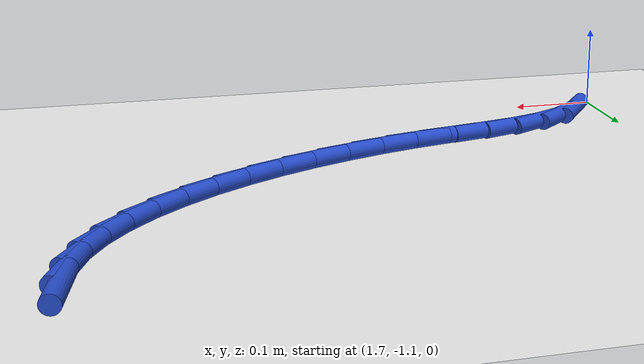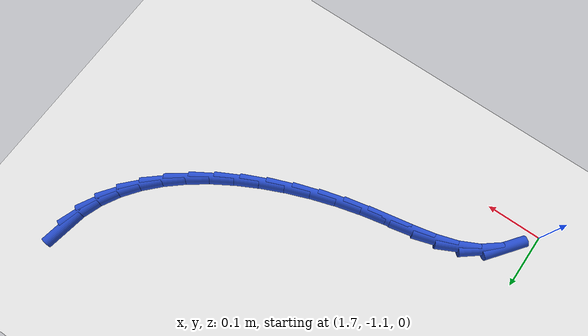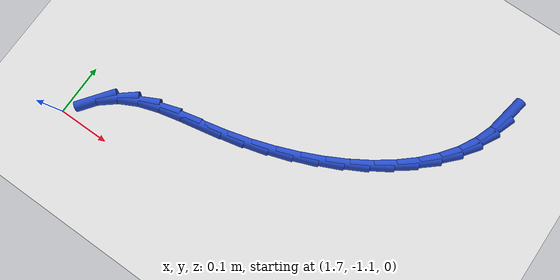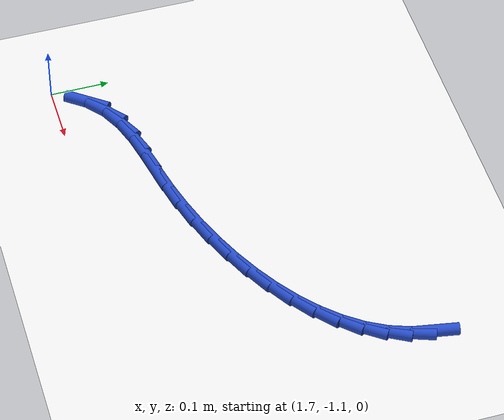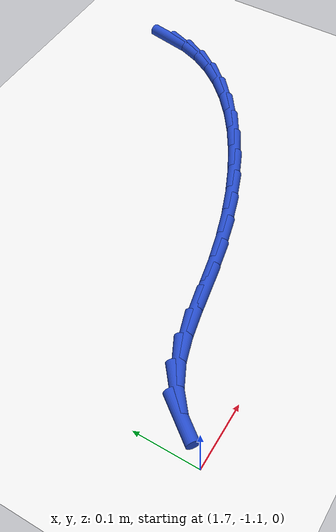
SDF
<sdf version="1.6">
 <world name="default">
  <model name="ground_plane">
   <static>1</static>
   <link name="link">
    <collision name="collision">
     <geometry><plane><normal>0 0 1</normal><size>100 100</size></plane></geometry>
     <surface><friction><ode><mu>100</mu><mu2>50</mu2></ode></friction></surface>
    </collision>
    <visual name="visual">
     <cast_shadows>0</cast_shadows>
     <geometry><plane><normal>0 0 1</normal><size>100 100</size></plane></geometry>
     <material>
      <script><uri>file://media/materials/scripts/gazebo.material</uri><name>Gazebo/WhiteGlow</name></script>
     </material>
    </visual>
   </link>
  </model>
  <model name="line">
   <link name="link_136">
    <pose>2.37936159091691 -0.6419083629191388 0.01 0 1.57 1.3928633456391588</pose>
    <collision name="collision">
     <geometry><cylinder><radius>0.01</radius><length>0.08</length></cylinder></geometry>
    </collision>
    <visual name="visual">
     <material>
      <script><name>Gazebo/Blue</name><uri>file://media/materials/scripts/gazebo.material</uri></script>
     </material>
     <geometry><cylinder><radius>0.01</radius><length>0.08</length></cylinder></geometry>
    </visual>
   </link>
   <link name="link_137">
    <pose>2.3729034131337294 -0.6778200743702004 0.01 0 1.57 1.2215556914024488</pose>
    <collision name="collision">
     <geometry><cylinder><radius>0.01</radius><length>0.08</length></cylinder></geometry>
    </collision>
    <visual name="visual">
     <material>
      <script><name>Gazebo/Blue</name><uri>file://media/materials/scripts/gazebo.material</uri></script>
     </material>
     <geometry><cylinder><radius>0.01</radius><length>0.08</length></cylinder></geometry>
    </visual>
   </link>
   <link name="link_138">
    <pose>2.36039523403972 -0.712167333581244 0.01 0 1.57 1.0661258276176937</pose>
    <collision name="collision">
     <geometry><cylinder><radius>0.01</radius><length>0.08</length></cylinder></geometry>
    </collision>
    <visual name="visual">
     <material>
      <script><name>Gazebo/Blue</name><uri>file://media/materials/scripts/gazebo.material</uri></script>
     </material>
     <geometry><cylinder><radius>0.01</radius><length>0.08</length></cylinder></geometry>
    </visual>
   </link>
   <link name="link_139">
    <pose>2.3423321098661805 -0.7448677289351513 0.01 0 1.57 0.9304214570946262</pose>
    <collision name="collision">
     <geometry><cylinder><radius>0.01</radius><length>0.08</length></cylinder></geometry>
    </collision>
    <visual name="visual">
     <material>
      <script><name>Gazebo/Blue</name><uri>file://media/materials/scripts/gazebo.material</uri></script>
     </material>
     <geometry><cylinder><radius>0.01</radius><length>0.08</length></cylinder></geometry>
    </visual>
   </link>
   <link name="link_140">
    <pose>2.319251448419956 -0.7758432162243105 0.01 0 1.57 0.8137996485377675</pose>
    <collision name="collision">
     <geometry><cylinder><radius>0.01</radius><length>0.08</length></cylinder></geometry>
    </collision>
    <visual name="visual">
     <material>
      <script><name>Gazebo/Blue</name><uri>file://media/materials/scripts/gazebo.material</uri></script>
     </material>
     <geometry><cylinder><radius>0.01</radius><length>0.08</length></cylinder></geometry>
    </visual>
   </link>
   <link name="link_141">
    <pose>2.291690657507892 -0.8050157512411066 0.01 0 1.57 0.7138820965768921</pose>
    <collision name="collision">
     <geometry><cylinder><radius>0.01</radius><length>0.08</length></cylinder></geometry>
    </collision>
    <visual name="visual">
     <material>
      <script><name>Gazebo/Blue</name><uri>file://media/materials/scripts/gazebo.material</uri></script>
     </material>
     <geometry><cylinder><radius>0.01</radius><length>0.08</length></cylinder></geometry>
    </visual>
   </link>
   <link name="link_142">
    <pose>2.260187144936837 -0.8323072897779275 0.01 0 1.57 0.6277511531535032</pose>
    <collision name="collision">
     <geometry><cylinder><radius>0.01</radius><length>0.08</length></cylinder></geometry>
    </collision>
    <visual name="visual">
     <material>
      <script><name>Gazebo/Blue</name><uri>file://media/materials/scripts/gazebo.material</uri></script>
     </material>
     <geometry><cylinder><radius>0.01</radius><length>0.08</length></cylinder></geometry>
    </visual>
   </link>
   <link name="link_143">
    <pose>2.2252783185136353 -0.8576397876271603 0.01 0 1.57 0.552579771759134</pose>
    <collision name="collision">
     <geometry><cylinder><radius>0.01</radius><length>0.08</length></cylinder></geometry>
    </collision>
    <visual name="visual">
     <material>
      <script><name>Gazebo/Blue</name><uri>file://media/materials/scripts/gazebo.material</uri></script>
     </material>
     <geometry><cylinder><radius>0.01</radius><length>0.08</length></cylinder></geometry>
    </visual>
   </link>
   <link name="link_144">
    <pose>2.187501586045131 -0.8809352005811921 0.01 0 1.57 0.48586736151510174</pose>
    <collision name="collision">
     <geometry><cylinder><radius>0.01</radius><length>0.08</length></cylinder></geometry>
    </collision>
    <visual name="visual">
     <material>
      <script><name>Gazebo/Blue</name><uri>file://media/materials/scripts/gazebo.material</uri></script>
     </material>
     <geometry><cylinder><radius>0.01</radius><length>0.08</length></cylinder></geometry>
    </visual>
   </link>
   <link name="link_145">
    <pose>2.1473943553381734 -0.9021154844324092 0.01 0 1.57 0.4254699828439555</pose>
    <collision name="collision">
     <geometry><cylinder><radius>0.01</radius><length>0.08</length></cylinder></geometry>
    </collision>
    <visual name="visual">
     <material>
      <script><name>Gazebo/Blue</name><uri>file://media/materials/scripts/gazebo.material</uri></script>
     </material>
     <geometry><cylinder><radius>0.01</radius><length>0.08</length></cylinder></geometry>
    </visual>
   </link>
   <link name="link_146">
    <pose>2.1054940341996065 -0.9211025949731991 0.01 0 1.57 0.3695420774267005</pose>
    <collision name="collision">
     <geometry><cylinder><radius>0.01</radius><length>0.08</length></cylinder></geometry>
    </collision>
    <visual name="visual">
     <material>
      <script><name>Gazebo/Blue</name><uri>file://media/materials/scripts/gazebo.material</uri></script>
     </material>
     <geometry><cylinder><radius>0.01</radius><length>0.08</length></cylinder></geometry>
    </visual>
   </link>
   <link name="link_147">
    <pose>2.062338030436277 -0.9378184879959488 0.01 0 1.57 0.31644621674170625</pose>
    <collision name="collision">
     <geometry><cylinder><radius>0.01</radius><length>0.08</length></cylinder></geometry>
    </collision>
    <visual name="visual">
     <material>
      <script><name>Gazebo/Blue</name><uri>file://media/materials/scripts/gazebo.material</uri></script>
     </material>
     <geometry><cylinder><radius>0.01</radius><length>0.08</length></cylinder></geometry>
    </visual>
   </link>
   <link name="link_148">
    <pose>2.01846375185503 -0.9521851192930453 0.01 0 1.57 0.2646517076227748</pose>
    <collision name="collision">
     <geometry><cylinder><radius>0.01</radius><length>0.08</length></cylinder></geometry>
    </collision>
    <visual name="visual">
     <material>
      <script><name>Gazebo/Blue</name><uri>file://media/materials/scripts/gazebo.material</uri></script>
     </material>
     <geometry><cylinder><radius>0.01</radius><length>0.08</length></cylinder></geometry>
    </visual>
   </link>
   <link name="link_149">
    <pose>1.974408606262712 -0.9641244446568753 0.01 0 1.57 0.21443070989623195</pose>
    <collision name="collision">
     <geometry><cylinder><radius>0.01</radius><length>0.08</length></cylinder></geometry>
    </collision>
    <visual name="visual">
     <material>
      <script><name>Gazebo/Blue</name><uri>file://media/materials/scripts/gazebo.material</uri></script>
     </material>
     <geometry><cylinder><radius>0.01</radius><length>0.08</length></cylinder></geometry>
    </visual>
   </link>
   <link name="link_150">
    <pose>1.93071791554846 -0.9736393529899731 0.01 0 1.57 0.19237490774039126</pose>
    <collision name="collision">
     <geometry><cylinder><radius>0.01</radius><length>0.08</length></cylinder></geometry>
    </collision>
    <visual name="visual">
     <material>
      <script><name>Gazebo/Blue</name><uri>file://media/materials/scripts/gazebo.material</uri></script>
     </material>
     <geometry><cylinder><radius>0.01</radius><length>0.08</length></cylinder></geometry>
    </visual>
   </link>
   <link name="link_151">
    <pose>1.8880559551782214 -0.9819492081544922 0.01 0 1.57 0.22285232572928018</pose>
    <collision name="collision">
     <geometry><cylinder><radius>0.01</radius><length>0.08</length></cylinder></geometry>
    </collision>
    <visual name="visual">
     <material>
      <script><name>Gazebo/Blue</name><uri>file://media/materials/scripts/gazebo.material</uri></script>
     </material>
     <geometry><cylinder><radius>0.01</radius><length>0.08</length></cylinder></geometry>
    </visual>
   </link>
   <link name="link_152">
    <pose>1.8471788459501273 -0.9912126273730215 0.01 0 1.57 0.3128498813159613</pose>
    <collision name="collision">
     <geometry><cylinder><radius>0.01</radius><length>0.08</length></cylinder></geometry>
    </collision>
    <visual name="visual">
     <material>
      <script><name>Gazebo/Blue</name><uri>file://media/materials/scripts/gazebo.material</uri></script>
     </material>
     <geometry><cylinder><radius>0.01</radius><length>0.08</length></cylinder></geometry>
    </visual>
   </link>
   <link name="link_153">
    <pose>1.808845087160973 -1.003612551508915 0.01 0 1.57 0.4682820712058308</pose>
    <collision name="collision">
     <geometry><cylinder><radius>0.01</radius><length>0.08</length></cylinder></geometry>
    </collision>
    <visual name="visual">
     <material>
      <script><name>Gazebo/Blue</name><uri>file://media/materials/scripts/gazebo.material</uri></script>
     </material>
     <geometry><cylinder><radius>0.01</radius><length>0.08</length></cylinder></geometry>
    </visual>
   </link>
   <link name="link_154">
    <pose>1.773813178107558 -1.021331921425525 0.01 0 1.57 0.6834311933703483</pose>
    <collision name="collision">
     <geometry><cylinder><radius>0.01</radius><length>0.08</length></cylinder></geometry>
    </collision>
    <visual name="visual">
     <material>
      <script><name>Gazebo/Blue</name><uri>file://media/materials/scripts/gazebo.material</uri></script>
     </material>
     <geometry><cylinder><radius>0.01</radius><length>0.08</length></cylinder></geometry>
    </visual>
   </link>
   <link name="link_155">
    <pose>1.7428416180866788 -1.0465536779862052 0.01 0 1.57 0.9229969946971328</pose>
    <collision name="collision">
     <geometry><cylinder><radius>0.01</radius><length>0.08</length></cylinder></geometry>
    </collision>
    <visual name="visual">
     <material>
      <script><name>Gazebo/Blue</name><uri>file://media/materials/scripts/gazebo.material</uri></script>
     </material>
     <geometry><cylinder><radius>0.01</radius><length>0.08</length></cylinder></geometry>
    </visual>
   </link>
  </model>
 </world>
</sdf>
